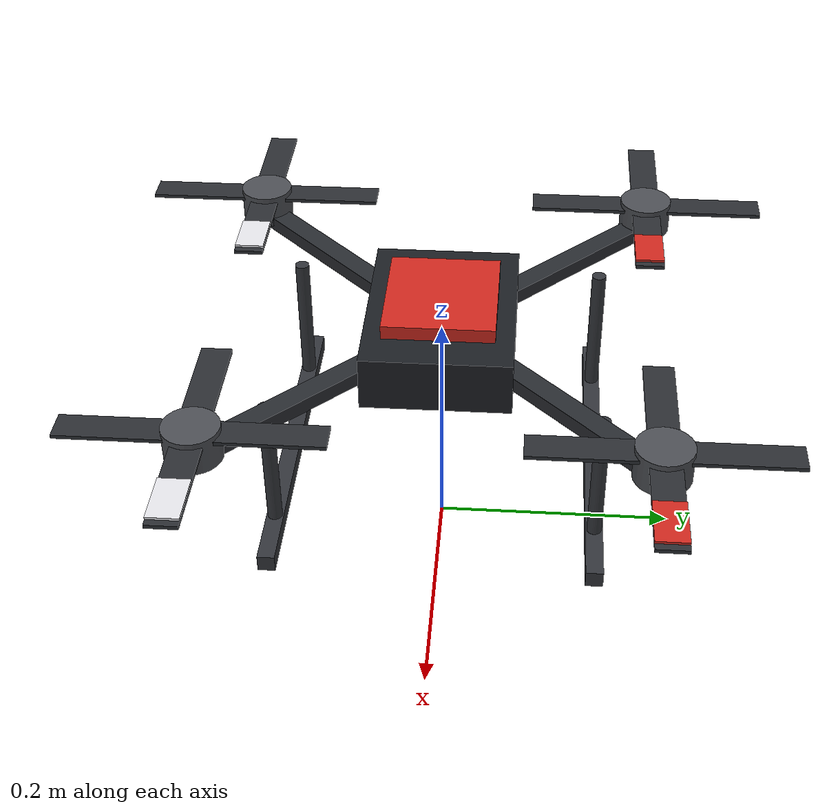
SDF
<sdf version="1.9">
 <world name="quad">
  <model name="homefly" canonical_link="body">
   <pose>0 0 0.2 0 0 0</pose>
   <link name="body">
    <inertial>
     <mass>0.8</mass>
     <inertia><ixx>0.005</ixx><iyy>0.005</iyy><izz>0.009</izz><ixy>0</ixy><ixz>0</ixz><iyz>0</iyz></inertia>
    </inertial>
    <visual name="iris_pod">
     <geometry><box><size>0.16 0.12 0.045</size></box></geometry>
     <material><diffuse>0.11 0.12 0.14 1</diffuse></material>
    </visual>
    <visual name="iris_canopy">
     <pose>0 0 0.028 0 0 0</pose>
     <geometry><box><size>0.10 0.09 0.012</size></box></geometry>
     <material><diffuse>0.82 0.16 0.12 1</diffuse></material>
    </visual>
    <visual name="iris_arm_0">
     <pose degrees="true">0.085 0.085 0 0 0 45</pose>
     <geometry><box><size>0.24 0.018 0.012</size></box></geometry>
     <material><diffuse>0.16 0.17 0.19 1</diffuse></material>
    </visual>
    <visual name="iris_arm_1">
     <pose degrees="true">0.085 -0.085 0 0 0 -45</pose>
     <geometry><box><size>0.24 0.018 0.012</size></box></geometry>
     <material><diffuse>0.16 0.17 0.19 1</diffuse></material>
    </visual>
    <visual name="iris_arm_2">
     <pose degrees="true">-0.085 -0.085 0 0 0 45</pose>
     <geometry><box><size>0.24 0.018 0.012</size></box></geometry>
     <material><diffuse>0.16 0.17 0.19 1</diffuse></material>
    </visual>
    <visual name="iris_arm_3">
     <pose degrees="true">-0.085 0.085 0 0 0 -45</pose>
     <geometry><box><size>0.24 0.018 0.012</size></box></geometry>
     <material><diffuse>0.16 0.17 0.19 1</diffuse></material>
    </visual>
    <visual name="iris_motor_0">
     <pose>0.17 0.17 0.012 0 0 0</pose>
     <geometry><cylinder><radius>0.022</radius><length>0.028</length></cylinder></geometry>
     <material><diffuse>0.30 0.31 0.33 1</diffuse></material>
    </visual>
    <visual name="iris_motor_1">
     <pose>0.17 -0.17 0.012 0 0 0</pose>
     <geometry><cylinder><radius>0.022</radius><length>0.028</length></cylinder></geometry>
     <material><diffuse>0.30 0.31 0.33 1</diffuse></material>
    </visual>
    <visual name="iris_motor_2">
     <pose>-0.17 -0.17 0.012 0 0 0</pose>
     <geometry><cylinder><radius>0.022</radius><length>0.028</length></cylinder></geometry>
     <material><diffuse>0.30 0.31 0.33 1</diffuse></material>
    </visual>
    <visual name="iris_motor_3">
     <pose>-0.17 0.17 0.012 0 0 0</pose>
     <geometry><cylinder><radius>0.022</radius><length>0.028</length></cylinder></geometry>
     <material><diffuse>0.30 0.31 0.33 1</diffuse></material>
    </visual>
    <visual name="iris_skid_l">
     <pose>0 0.13 -0.13 0 0 0</pose>
     <geometry><box><size>0.30 0.014 0.014</size></box></geometry>
     <material><diffuse>0.20 0.21 0.23 1</diffuse></material>
    </visual>
    <visual name="iris_skid_r">
     <pose>0 -0.13 -0.13 0 0 0</pose>
     <geometry><box><size>0.30 0.014 0.014</size></box></geometry>
     <material><diffuse>0.20 0.21 0.23 1</diffuse></material>
    </visual>
    <visual name="iris_strut_0">
     <pose>0.1 0.13 -0.07 0 0 0</pose>
     <geometry><cylinder><radius>0.006</radius><length>0.12</length></cylinder></geometry>
     <material><diffuse>0.20 0.21 0.23 1</diffuse></material>
    </visual>
    <visual name="iris_strut_1">
     <pose>0.1 -0.13 -0.07 0 0 0</pose>
     <geometry><cylinder><radius>0.006</radius><length>0.12</length></cylinder></geometry>
     <material><diffuse>0.20 0.21 0.23 1</diffuse></material>
    </visual>
    <visual name="iris_strut_2">
     <pose>-0.1 0.13 -0.07 0 0 0</pose>
     <geometry><cylinder><radius>0.006</radius><length>0.12</length></cylinder></geometry>
     <material><diffuse>0.20 0.21 0.23 1</diffuse></material>
    </visual>
    <visual name="iris_strut_3">
     <pose>-0.1 -0.13 -0.07 0 0 0</pose>
     <geometry><cylinder><radius>0.006</radius><length>0.12</length></cylinder></geometry>
     <material><diffuse>0.20 0.21 0.23 1</diffuse></material>
    </visual>
    <collision name="body_collision"><geometry><box><size>0.20 0.20 0.05</size></box></geometry></collision>
    <sensor name="imu" type="imu">
     <topic>/world/quad/model/homefly/link/body/sensor/imu/imu</topic>
     <always_on>1</always_on>
     <update_rate>1000</update_rate>
     <imu>
      <angular_velocity>
       <x><noise type="gaussian"><mean>0</mean><stddev>0</stddev></noise></x>
       <y><noise type="gaussian"><mean>0</mean><stddev>0</stddev></noise></y>
       <z><noise type="gaussian"><mean>0</mean><stddev>0</stddev></noise></z>
      </angular_velocity>
      <linear_acceleration>
       <x><noise type="gaussian"><mean>0</mean><stddev>0</stddev></noise></x>
       <y><noise type="gaussian"><mean>0</mean><stddev>0</stddev></noise></y>
       <z><noise type="gaussian"><mean>0</mean><stddev>0</stddev></noise></z>
      </linear_acceleration>
     </imu>
    </sensor>
   </link>
   <link name="rotor_0">
    <pose>0.17 0.17 0.02 0 0 0</pose>
    <inertial>
     <mass>0.005</mass>
     <inertia><ixx>1e-6</ixx><iyy>1e-6</iyy><izz>2e-6</izz><ixy>0</ixy><ixz>0</ixz><iyz>0</iyz></inertia>
    </inertial>
    <visual name="visual">
     <geometry><cylinder><radius>0.012</radius><length>0.008</length></cylinder></geometry>
     <material><diffuse>0.30 0.31 0.33 1</diffuse></material>
    </visual>
    <visual name="prop_blade_a">
     <geometry><box><size>0.20 0.024 0.003</size></box></geometry>
     <material><diffuse>0.17 0.18 0.20 1</diffuse></material>
    </visual>
    <visual name="prop_blade_b">
     <pose degrees="true">0 0 0 0 0 90</pose>
     <geometry><box><size>0.20 0.024 0.003</size></box></geometry>
     <material><diffuse>0.17 0.18 0.20 1</diffuse></material>
    </visual>
    <visual name="prop_mark">
     <pose>0.075 0 0.003 0 0 0</pose>
     <geometry><box><size>0.04 0.024 0.002</size></box></geometry>
     <material><diffuse>0.82 0.16 0.12 1</diffuse></material>
    </visual>
   </link>
   <joint name="rotor_0_joint" type="revolute">
    <parent>body</parent>
    <child>rotor_0</child>
    <axis><xyz>0 0 1</xyz><limit><lower>-1e16</lower><upper>1e16</upper></limit></axis>
   </joint>
   <link name="rotor_1">
    <pose>0.17 -0.17 0.02 0 0 0</pose>
    <inertial>
     <mass>0.005</mass>
     <inertia><ixx>1e-6</ixx><iyy>1e-6</iyy><izz>2e-6</izz><ixy>0</ixy><ixz>0</ixz><iyz>0</iyz></inertia>
    </inertial>
    <visual name="visual">
     <geometry><cylinder><radius>0.012</radius><length>0.008</length></cylinder></geometry>
     <material><diffuse>0.30 0.31 0.33 1</diffuse></material>
    </visual>
    <visual name="prop_blade_a">
     <geometry><box><size>0.20 0.024 0.003</size></box></geometry>
     <material><diffuse>0.17 0.18 0.20 1</diffuse></material>
    </visual>
    <visual name="prop_blade_b">
     <pose degrees="true">0 0 0 0 0 90</pose>
     <geometry><box><size>0.20 0.024 0.003</size></box></geometry>
     <material><diffuse>0.17 0.18 0.20 1</diffuse></material>
    </visual>
    <visual name="prop_mark">
     <pose>0.075 0 0.003 0 0 0</pose>
     <geometry><box><size>0.04 0.024 0.002</size></box></geometry>
     <material><diffuse>0.90 0.90 0.92 1</diffuse></material>
    </visual>
   </link>
   <joint name="rotor_1_joint" type="revolute">
    <parent>body</parent>
    <child>rotor_1</child>
    <axis><xyz>0 0 1</xyz><limit><lower>-1e16</lower><upper>1e16</upper></limit></axis>
   </joint>
   <link name="rotor_2">
    <pose>-0.17 -0.17 0.02 0 0 0</pose>
    <inertial>
     <mass>0.005</mass>
     <inertia><ixx>1e-6</ixx><iyy>1e-6</iyy><izz>2e-6</izz><ixy>0</ixy><ixz>0</ixz><iyz>0</iyz></inertia>
    </inertial>
    <visual name="visual">
     <geometry><cylinder><radius>0.012</radius><length>0.008</length></cylinder></geometry>
     <material><diffuse>0.30 0.31 0.33 1</diffuse></material>
    </visual>
    <visual name="prop_blade_a">
     <geometry><box><size>0.20 0.024 0.003</size></box></geometry>
     <material><diffuse>0.17 0.18 0.20 1</diffuse></material>
    </visual>
    <visual name="prop_blade_b">
     <pose degrees="true">0 0 0 0 0 90</pose>
     <geometry><box><size>0.20 0.024 0.003</size></box></geometry>
     <material><diffuse>0.17 0.18 0.20 1</diffuse></material>
    </visual>
    <visual name="prop_mark">
     <pose>0.075 0 0.003 0 0 0</pose>
     <geometry><box><size>0.04 0.024 0.002</size></box></geometry>
     <material><diffuse>0.90 0.90 0.92 1</diffuse></material>
    </visual>
   </link>
   <joint name="rotor_2_joint" type="revolute">
    <parent>body</parent>
    <child>rotor_2</child>
    <axis><xyz>0 0 1</xyz><limit><lower>-1e16</lower><upper>1e16</upper></limit></axis>
   </joint>
   <link name="rotor_3">
    <pose>-0.17 0.17 0.02 0 0 0</pose>
    <inertial>
     <mass>0.005</mass>
     <inertia><ixx>1e-6</ixx><iyy>1e-6</iyy><izz>2e-6</izz><ixy>0</ixy><ixz>0</ixz><iyz>0</iyz></inertia>
    </inertial>
    <visual name="visual">
     <geometry><cylinder><radius>0.012</radius><length>0.008</length></cylinder></geometry>
     <material><diffuse>0.30 0.31 0.33 1</diffuse></material>
    </visual>
    <visual name="prop_blade_a">
     <geometry><box><size>0.20 0.024 0.003</size></box></geometry>
     <material><diffuse>0.17 0.18 0.20 1</diffuse></material>
    </visual>
    <visual name="prop_blade_b">
     <pose degrees="true">0 0 0 0 0 90</pose>
     <geometry><box><size>0.20 0.024 0.003</size></box></geometry>
     <material><diffuse>0.17 0.18 0.20 1</diffuse></material>
    </visual>
    <visual name="prop_mark">
     <pose>0.075 0 0.003 0 0 0</pose>
     <geometry><box><size>0.04 0.024 0.002</size></box></geometry>
     <material><diffuse>0.82 0.16 0.12 1</diffuse></material>
    </visual>
   </link>
   <joint name="rotor_3_joint" type="revolute">
    <parent>body</parent>
    <child>rotor_3</child>
    <axis><xyz>0 0 1</xyz><limit><lower>-1e16</lower><upper>1e16</upper></limit></axis>
   </joint>
   <plugin filename="gz-sim-multicopter-motor-model-system" name="gz::sim::systems::MulticopterMotorModel">
    <jointName>rotor_0_joint</jointName>
    <linkName>rotor_0</linkName>
    <turningDirection>ccw</turningDirection>
    <timeConstantUp>0.0125</timeConstantUp>
    <timeConstantDown>0.025</timeConstantDown>
    <maxRotVelocity>1000</maxRotVelocity>
    <motorConstant>8.54858e-06</motorConstant>
    <momentConstant>0.016</momentConstant>
    <commandSubTopic>actuators</commandSubTopic>
    <motorNumber>0</motorNumber>
    <rotorDragCoefficient>8.06428e-05</rotorDragCoefficient>
    <rollingMomentCoefficient>1e-06</rollingMomentCoefficient>
    <rotorVelocitySlowdownSim>10</rotorVelocitySlowdownSim>
    <motorType>velocity</motorType>
   </plugin>
   <plugin filename="gz-sim-multicopter-motor-model-system" name="gz::sim::systems::MulticopterMotorModel">
    <jointName>rotor_1_joint</jointName>
    <linkName>rotor_1</linkName>
    <turningDirection>cw</turningDirection>
    <timeConstantUp>0.0125</timeConstantUp>
    <timeConstantDown>0.025</timeConstantDown>
    <maxRotVelocity>1000</maxRotVelocity>
    <motorConstant>8.54858e-06</motorConstant>
    <momentConstant>0.016</momentConstant>
    <commandSubTopic>actuators</commandSubTopic>
    <motorNumber>1</motorNumber>
    <rotorDragCoefficient>8.06428e-05</rotorDragCoefficient>
    <rollingMomentCoefficient>1e-06</rollingMomentCoefficient>
    <rotorVelocitySlowdownSim>10</rotorVelocitySlowdownSim>
    <motorType>velocity</motorType>
   </plugin>
   <plugin filename="gz-sim-multicopter-motor-model-system" name="gz::sim::systems::MulticopterMotorModel">
    <jointName>rotor_2_joint</jointName>
    <linkName>rotor_2</linkName>
    <turningDirection>cw</turningDirection>
    <timeConstantUp>0.0125</timeConstantUp>
    <timeConstantDown>0.025</timeConstantDown>
    <maxRotVelocity>1000</maxRotVelocity>
    <motorConstant>8.54858e-06</motorConstant>
    <momentConstant>0.016</momentConstant>
    <commandSubTopic>actuators</commandSubTopic>
    <motorNumber>2</motorNumber>
    <rotorDragCoefficient>8.06428e-05</rotorDragCoefficient>
    <rollingMomentCoefficient>1e-06</rollingMomentCoefficient>
    <rotorVelocitySlowdownSim>10</rotorVelocitySlowdownSim>
    <motorType>velocity</motorType>
   </plugin>
   <plugin filename="gz-sim-multicopter-motor-model-system" name="gz::sim::systems::MulticopterMotorModel">
    <jointName>rotor_3_joint</jointName>
    <linkName>rotor_3</linkName>
    <turningDirection>ccw</turningDirection>
    <timeConstantUp>0.0125</timeConstantUp>
    <timeConstantDown>0.025</timeConstantDown>
    <maxRotVelocity>1000</maxRotVelocity>
    <motorConstant>8.54858e-06</motorConstant>
    <momentConstant>0.016</momentConstant>
    <commandSubTopic>actuators</commandSubTopic>
    <motorNumber>3</motorNumber>
    <rotorDragCoefficient>8.06428e-05</rotorDragCoefficient>
    <rollingMomentCoefficient>1e-06</rollingMomentCoefficient>
    <rotorVelocitySlowdownSim>10</rotorVelocitySlowdownSim>
    <motorType>velocity</motorType>
   </plugin>
  </model>
 </world>
</sdf>
